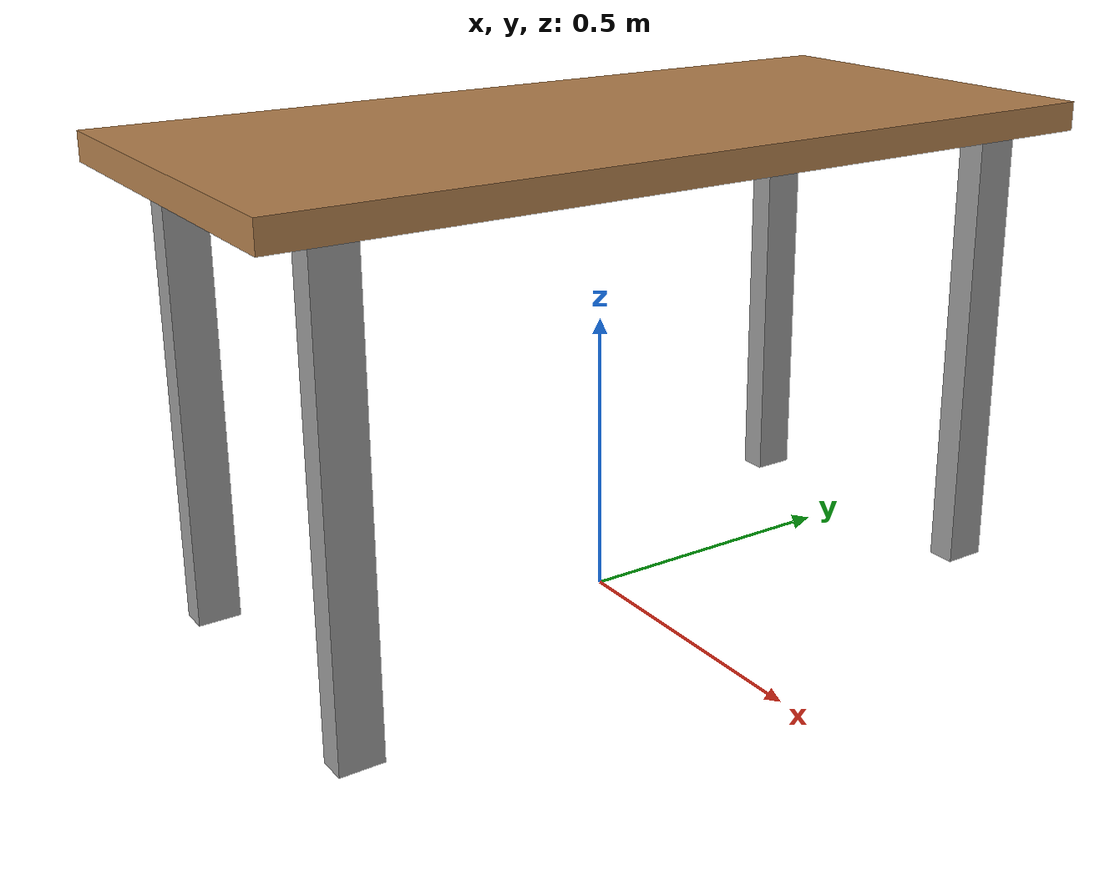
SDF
<?xml version="1.0" ?>
<!-- |    This document was autogenerated by xacro from workbench-1.4.sdf.xacro        | -->
<!-- |    EDITING THIS FILE BY HAND IS NOT RECOMMENDED                                 | -->
<sdf version="1.4" xmlns:xacro="http://www.ros.org/wiki/xacro">
  <model name="DLR_workbench">
    <pose>0 0 0 0 0 0</pose>
    <static>false</static>
    <link name="main_body">
      <pose>0 0 0 0 0 0</pose>
      <!-- workbench top -->
      <collision name="top">
        <geometry>
          <box>
            <size>0.70 1.50 0.05</size>
          </box>
        </geometry>
        <pose>0 0 0.825 0 0 0</pose>
        <surface>
            <friction>
              <ode>
                <mu>0.7</mu>
                <mu2>0.7</mu2>
              </ode>
            </friction>
        </surface>
      </collision>
      <visual name="top">
        <geometry>
          <box>
            <size>0.70 1.50 0.05</size>
          </box>
        </geometry>
        <pose>0 0 0.825 0 0 0</pose>
        <material>
          <script>
            <name>Gazebo/Wood</name>
          </script>
        </material>
      </visual>
      <!-- left rear leg -->
      <collision name="left_rear_leg">
        <geometry>
          <box>
            <size>0.05 0.075 0.80</size>
          </box>
        </geometry>
        <pose>-0.275 -0.6225 0.40 0 0 0</pose>
      </collision>
      <visual name="left_rear_leg">
        <geometry>
          <box>
            <size>0.05 0.075 0.80</size>
          </box>
        </geometry>
        <pose>-0.275 -0.6225 0.40 0 0 0</pose>
        <material>
          <script>
            <name>Gazebo/Grey</name>
          </script>
        </material>
      </visual>
      <!-- right rear leg -->
      <collision name="left_rear_leg">
        <geometry>
          <box>
            <size>0.05 0.075 0.80</size>
          </box>
        </geometry>
        <pose>-0.275 0.6225 0.40 0 0 0</pose>
      </collision>
      <visual name="right_rear_leg">
        <geometry>
          <box>
            <size>0.05 0.075 0.80</size>
          </box>
        </geometry>
        <pose>-0.275 0.6225 0.40 0 0 0</pose>
        <material>
          <script>
            <name>Gazebo/Grey</name>
          </script>
        </material>
      </visual>
      <!-- left front leg -->
      <collision name="left_rear_leg">
        <geometry>
          <box>
            <size>0.05 0.075 0.80</size>
          </box>
        </geometry>
        <pose>0.275 -0.6225 0.40 0 0 0</pose>
      </collision>
      <visual name="left_front_leg">
        <geometry>
          <box>
            <size>0.05 0.075 0.80</size>
          </box>
        </geometry>
        <pose>0.275 -0.6225 0.40 0 0 0</pose>
        <material>
          <script>
            <name>Gazebo/Grey</name>
          </script>
        </material>
      </visual>
      <!-- right front leg -->
      <collision name="left_rear_leg">
        <geometry>
          <box>
            <size>0.05 0.075 0.80</size>
          </box>
        </geometry>
        <pose>0.275 0.6225 0.40 0 0 0</pose>
      </collision>
      <visual name="right_front_leg">
        <geometry>
          <box>
            <size>0.05 0.075 0.80</size>
          </box>
        </geometry>
        <pose>0.275 0.6225 0.40 0 0 0</pose>
        <material>
          <script>
            <name>Gazebo/Grey</name>
          </script>
        </material>
      </visual>
      <!-- inertial model -->
      <inertial>
        <pose>0 0 0.8204 0 0 0</pose>
        <mass>50.0</mass>
        <inertia>
          <!-- interias are tricky to compute -->
          <!-- http://answers.gazebosim.org/question/4372/the-inertia-matrix-explained/ -->
          <ixx>9.60785914583</ixx>
          <ixy>0.0</ixy>
          <ixz>0.0</ixz>
          <iyy>2.20301594404</iyy>
          <iyz>0.0</iyz>
          <izz>11.5369686393</izz>
        </inertia>
      </inertial>
    </link>
  </model>
</sdf>
